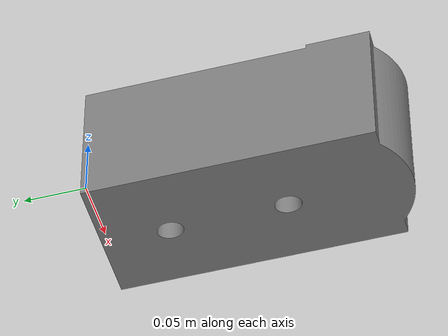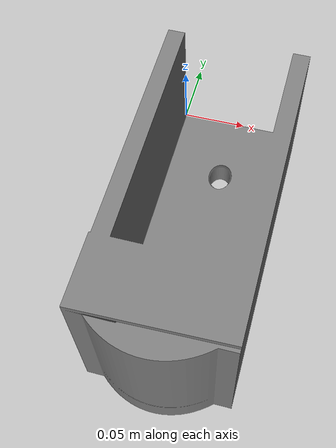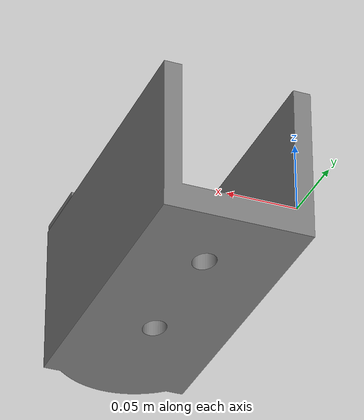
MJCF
<mujoco model="wall_stand">
  <compiler angle="radian" meshdir="assets" texturedir="assets" autolimits="true"/>
  <default>
    <default class="visual">
      <geom group="2" type="mesh" contype="0" conaffinity="0"/>
    </default>
    <default class="collision">
      <geom group="3" type="mesh" density="500" mass="2"/>
    </default>
  </default>
  <asset>
    <mesh file="wall_stand.obj" scale="0.002 0.0026 0.003"/>
    <mesh file="wall_stand_collision_0.obj" scale="0.002 0.0026 0.003"/>
    <mesh file="wall_stand_collision_1.obj" scale="0.002 0.0026 0.003"/>
    <mesh file="wall_stand_collision_2.obj" scale="0.002 0.0026 0.003"/>
    <mesh file="wall_stand_collision_3.obj" scale="0.002 0.0026 0.003"/>
    <mesh file="wall_stand_collision_4.obj" scale="0.002 0.0026 0.003"/>
    <mesh file="wall_stand_collision_5.obj" scale="0.002 0.0026 0.003"/>
    <mesh file="wall_stand_collision_6.obj" scale="0.002 0.0026 0.003"/>
    <mesh file="wall_stand_collision_7.obj" scale="0.002 0.0026 0.003"/>
    <mesh file="wall_stand_collision_8.obj" scale="0.002 0.0026 0.003"/>
    <mesh file="wall_stand_collision_9.obj" scale="0.002 0.0026 0.003"/>
    <mesh file="wall_stand_collision_10.obj" scale="0.002 0.0026 0.003"/>
    <mesh file="wall_stand_collision_11.obj" scale="0.002 0.0026 0.003"/>
    <mesh file="wall_stand_collision_12.obj" scale="0.002 0.0026 0.003"/>
  </asset>
  <worldbody>
    <body name="wall_stand">
    <body name="surface">
      <geom mesh="wall_stand" class="visual"/>
    </body>
      <geom mesh="wall_stand_collision_0" rgba="0.9107258052244467 0.13607695541948217 0.0026723809949670029 1" class="collision"/>
      <geom mesh="wall_stand_collision_1" rgba="0.794794663093509 0.6325292876207017 0.14704006918304657 1" class="collision"/>
      <geom mesh="wall_stand_collision_2" rgba="0.13323821099495237 0.9018135432498758 0.9954390735059715 1" class="collision"/>
      <geom mesh="wall_stand_collision_3" rgba="0.6045137196089031 0.6019986806212584 0.479908224961908 1" class="collision"/>
      <geom mesh="wall_stand_collision_4" rgba="0.27981506895099584 0.3166859770765218 0.6387740792938246 1" class="collision"/>
      <geom mesh="wall_stand_collision_5" rgba="0.7559830708498927 0.2345816456289579 0.5105153221547655 1" class="collision"/>
      <geom mesh="wall_stand_collision_6" rgba="0.187217643294587 0.16063648584638657 0.5860274024638293 1" class="collision"/>
      <geom mesh="wall_stand_collision_7" rgba="0.23931239755678113 0.9661071015311222 0.05998039939292876 1" class="collision"/>
      <geom mesh="wall_stand_collision_8" rgba="0.8612662134473328 0.7173007626896687 0.46732002953992824 1" class="collision"/>
      <geom mesh="wall_stand_collision_9" rgba="0.43263493387908136 0.7873029449798871 0.18266082812061946 1" class="collision"/>
      <geom mesh="wall_stand_collision_10" rgba="0.20600242268271152 0.7615594669401821 0.7969496862324548 1" class="collision"/>
      <geom mesh="wall_stand_collision_11" rgba="0.2994527773425083 0.4449909196773899 0.6379719894979649 1" class="collision"/>
      <geom mesh="wall_stand_collision_12" rgba="0.06534464506480986 0.1624030742267375 0.9336828991519022 1" class="collision"/>
    </body>
  </worldbody>
</mujoco>
